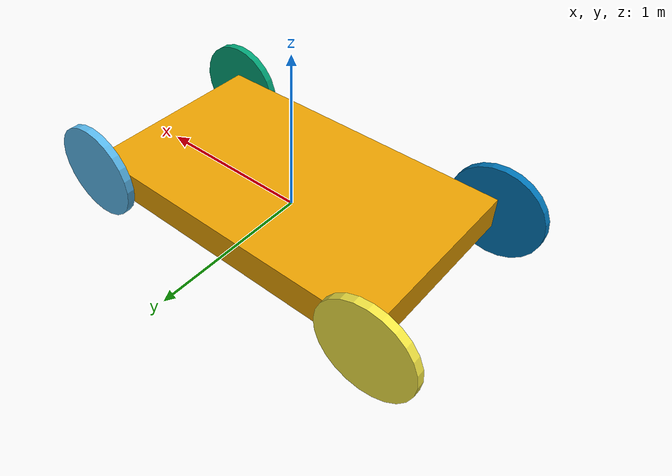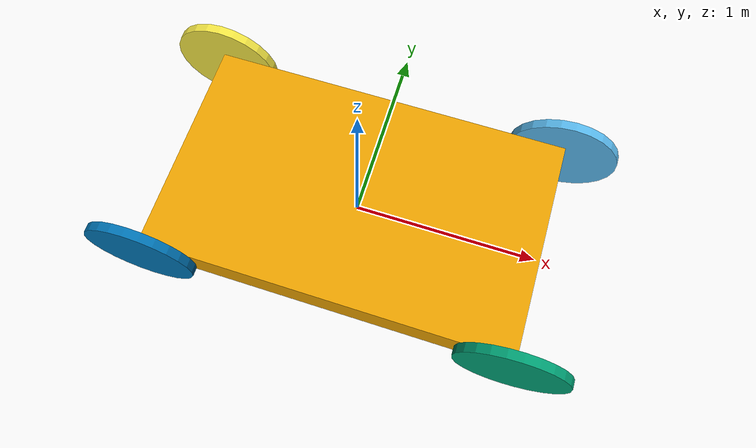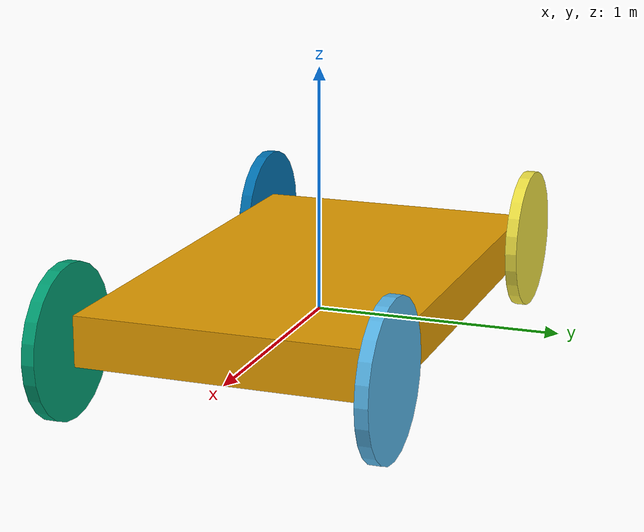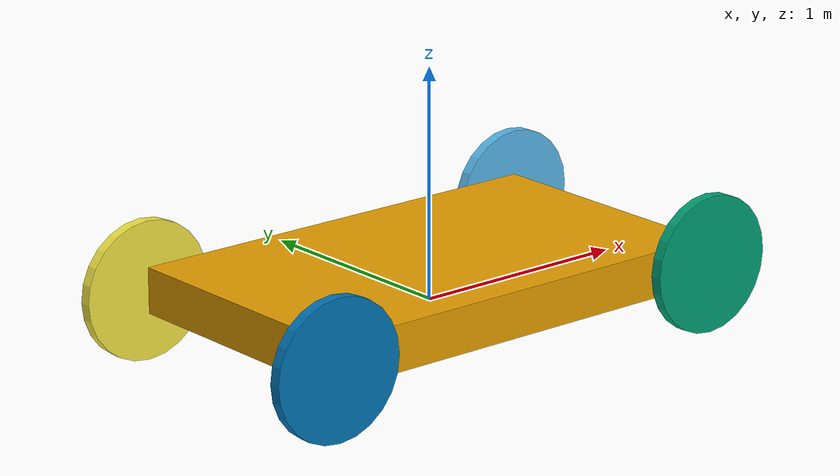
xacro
<?xml version="1.0"?>

<robot name="car" xmlns:xacro="http://ros.org/wiki/xacro">

    <!--    Properties    -->
    <xacro:property name="namespace" value="car"/>
    <xacro:property name="PI" value="3.1415926535897931"/>

    <!-- Properties of base -->
    <xacro:property name="height" value=".2"/>
    <xacro:property name="width" value="1.2"/>
    <xacro:property name="length" value="2"/>
    <xacro:property name="mass_base" value="1"/>

    <!-- Properties of wheels    -->
    <xacro:property name="radius" value="0.3"/>
    <xacro:property name="h" value=".05"/>
    <xacro:property name="mass_wheel" value="0.2"/>

    <!-- Including Color material for Gazebo -->
    <xacro:include filename="$(find workshop_description)/urdf/materials.xacro"/>

    <link name="base_link">
        <collision>
            <origin xyz="0 0 ${height/2}" rpy="0 0 0"/>
            <geometry>
                <box size="${length} ${width} ${height}"/>
            </geometry>
        </collision>
        <visual>
            <origin xyz="0 0 ${height/2}" rpy="0 0 0"/>
            <geometry>
                <box size="${length} ${width} ${height}"/>
            </geometry>
        </visual>
        <inertial>
            <origin xyz="0 0 ${height/2}" rpy="0 0 0"/>
            <mass value="${mass_base}"/>
            <inertia ixx="${mass_base / 12.0 * (height*height + width*width)}" ixy="0.0" ixz="0.0"
                     iyy="${mass_base / 12.0 * (height*height + length*length)}" iyz="0.0"
                     izz="${mass_base / 12.0 * (length*length + width*width)}"/>
        </inertial>
    </link>

    <joint name="front_wheel_r_joint" type="continuous">
        <origin xyz="${length/2} ${(h+width)/2} ${height/2}" rpy="0.0 0.0 0.0"/>
        <parent link="base_link"/>
        <child link="front_wheel_r_link"/>
        <axis xyz="0 1 0"/>
    </joint>

    <joint name="front_wheel_l_joint" type="continuous">
        <origin xyz="${length/2} -${(h+width)/2} ${height/2}" rpy="0.0 0.0 0"/>
        <parent link="base_link"/>
        <child link="front_wheel_l_link"/>
        <axis xyz="0 1 0"/>
    </joint>

    <joint name="back_wheel_r_joint" type="continuous">
        <origin xyz="${-length/2} ${(h+width)/2} ${height/2}" rpy="0.0 0.0 0.0"/>
        <parent link="base_link"/>
        <child link="back_wheel_r_link"/>
        <axis xyz="0 1 0"/>
    </joint>

    <joint name="back_wheel_l_joint" type="continuous">
        <origin xyz="${-length/2} -${(h+width)/2} ${height/2}" rpy="0.0 0.0 0.0"/>
        <parent link="base_link"/>
        <child link="back_wheel_l_link"/>
        <axis xyz="0 1 0"/>
    </joint>

    <link name="front_wheel_r_link">
        <visual>
            <origin xyz="0.0 0.0 0.0" rpy="${PI/2} 0.0 0.0"/>
            <geometry>
                <cylinder radius="${radius}" length="${h}"/>
            </geometry>
        </visual>
        <collision>
            <origin xyz="0.0 0.0 0.0" rpy="${PI/2} 0.0 0.0"/>
            <geometry>
                <cylinder radius="${radius}" length="${h}"/>
            </geometry>
        </collision>
        <inertial>
            <origin xyz="0.0 0.0 0.0" rpy="${PI/2} 0.0 0.0"/>
            <mass value="${mass_wheel}"/>
            <inertia ixx="${mass_wheel / 12.0 * (3*radius*radius + h*h)}" ixy="0.0" ixz="0.0"
                     iyy="${mass_wheel / 12.0 * (3*radius*radius + h*h)}" iyz="0.0"
                     izz="${mass_wheel / 2.0 * (radius*radius)}"/>
        </inertial>
    </link>

    <link name="front_wheel_l_link">
        <visual>
            <origin xyz="0.0 0.0 0.0" rpy="${PI/2} 0.0 0.0"/>
            <geometry>
                <cylinder radius="${radius}" length="${h}"/>
            </geometry>
        </visual>
        <collision>
            <origin xyz="0.0 0.0 0.0" rpy="${PI/2} 0.0 0.0"/>
            <geometry>
                <cylinder radius="${radius}" length="${h}"/>
            </geometry>
        </collision>
        <inertial>
            <origin xyz="0.0 0.0 0.0" rpy="${PI/2} 0.0 0.0"/>
            <mass value="${mass_wheel}"/>
            <inertia ixx="${mass_wheel / 12.0 * (3*radius*radius + h*h)}" ixy="0.0" ixz="0.0"
                     iyy="${mass_wheel / 12.0 * (3*radius*radius + h*h)}" iyz="0.0"
                     izz="${mass_wheel / 2.0 * (radius*radius)}"/>
        </inertial>
    </link>

    <link name="back_wheel_r_link">
        <visual>
            <origin xyz="0.0 0.0 0.0" rpy="${PI/2} 0.0 0.0"/>
            <geometry>
                <cylinder radius="${radius}" length="${h}"/>
            </geometry>
        </visual>
        <collision>
            <origin xyz="0.0 0.0 0.0" rpy="${PI/2} 0.0 0.0"/>
            <geometry>
                <cylinder radius="${radius}" length="${h}"/>
            </geometry>
        </collision>
        <inertial>
            <origin xyz="0.0 0.0 0.0" rpy="${PI/2} 0.0 0.0"/>
            <mass value="${mass_wheel}"/>
            <inertia ixx="${mass_wheel / 12.0 * (3*radius*radius + h*h)}" ixy="0.0" ixz="0.0"
                     iyy="${mass_wheel / 12.0 * (3*radius*radius + h*h)}" iyz="0.0"
                     izz="${mass_wheel / 2.0 * (radius*radius)}"/>
        </inertial>
    </link>

    <link name="back_wheel_l_link">
        <visual>
            <origin xyz="0.0 0.0 0.0" rpy="${PI/2} 0.0 0.0"/>
            <geometry>
                <cylinder radius="${radius}" length="${h}"/>
            </geometry>
        </visual>
        <collision>
            <origin xyz="0.0 0.0 0.0" rpy="${PI/2} 0.0 0.0"/>
            <geometry>
                <cylinder radius="${radius}" length="${h}"/>
            </geometry>
        </collision>
        <inertial>
            <origin xyz="0.0 0.0 0.0" rpy="${PI/2} 0.0 0.0"/>
            <mass value="${mass_wheel}"/>
            <inertia ixx="${mass_wheel / 12.0 * (3*radius*radius + h*h)}" ixy="0.0" ixz="0.0"
                     iyy="${mass_wheel / 12.0 * (3*radius*radius + h*h)}" iyz="0.0"
                     izz="${mass_wheel / 2.0 * (radius*radius)}"/>
        </inertial>
    </link>

</robot>
